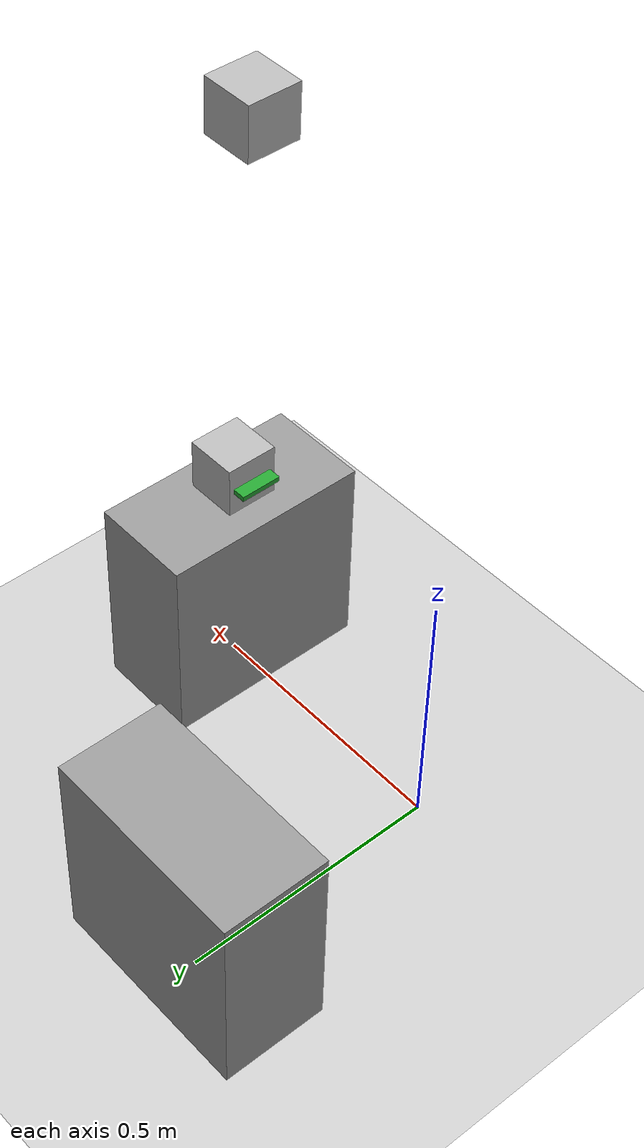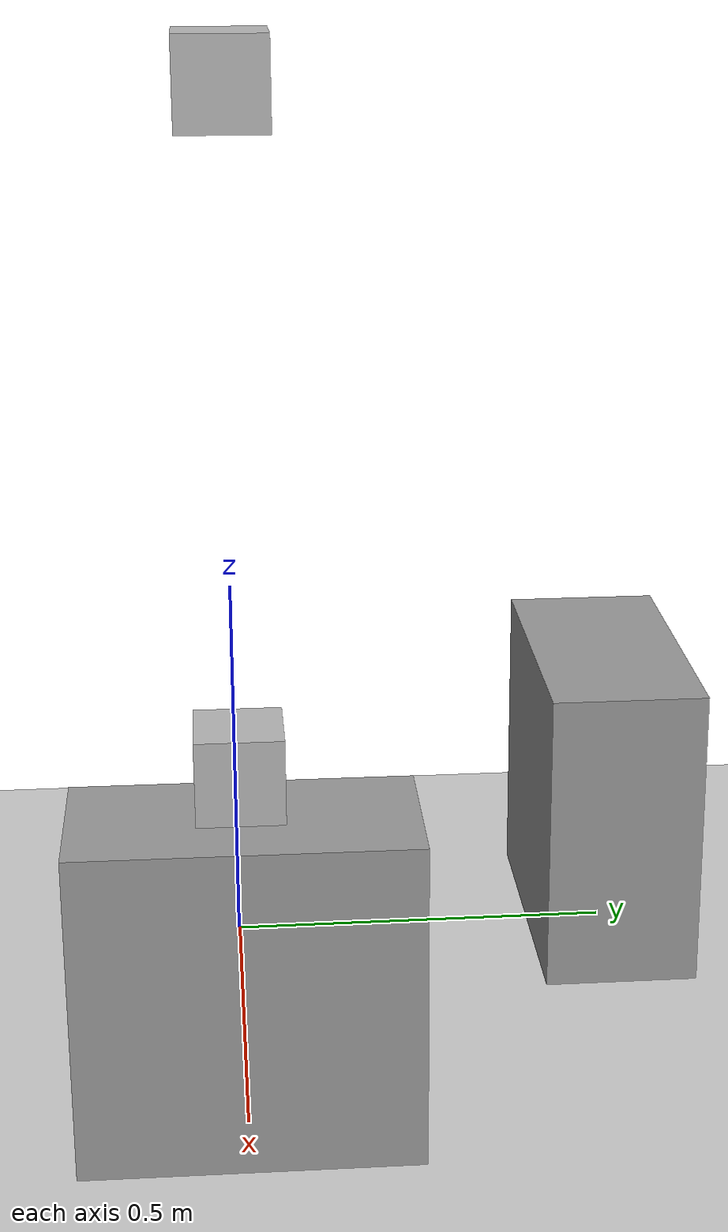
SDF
<sdf version="1.6">
 <world name="default">
  <light name="sun" type="directional">
   <pose>0 0 10 0 -0 0</pose>
   <diffuse>0.8 0.8 0.8 1</diffuse>
   <specular>0.2 0.2 0.2 1</specular>
   <attenuation>
    <range>1000</range>
    <constant>0.9</constant>
    <linear>0.01</linear>
    <quadratic>0.001</quadratic>
   </attenuation>
   <direction>-0.5 0.1 -0.9</direction>
  </light>
  <model name="ground_plane">
   <static>1</static>
   <link name="link">
    <collision name="collision">
     <geometry><plane><normal>0 0 1</normal><size>100 100</size></plane></geometry>
     <surface>
      <contact><collide_bitmask>65535</collide_bitmask></contact>
      <friction><ode><mu>100</mu><mu2>50</mu2></ode></friction>
     </surface>
    </collision>
    <visual name="visual">
     <cast_shadows>0</cast_shadows>
     <geometry><plane><normal>0 0 1</normal><size>100 100</size></plane></geometry>
     <material>
      <script><uri>file://media/materials/scripts/gazebo.material</uri><name>Gazebo/Grey</name></script>
     </material>
    </visual>
   </link>
  </model>
  <gravity>0 0 -9.8</gravity>
  <magnetic_field>6e-06 2.3e-05 -4.2e-05</magnetic_field>
  <atmosphere type="adiabatic"/>
  <physics name="default_physics" default="0" type="ode">
   <max_step_size>0.001</max_step_size>
   <real_time_factor>1</real_time_factor>
   <real_time_update_rate>1000</real_time_update_rate>
  </physics>
  <scene><ambient>0.4 0.4 0.4 1</ambient><background>0.7 0.7 0.7 1</background><shadows>1</shadows></scene>
  <spherical_coordinates>
   <surface_model>EARTH_WGS84</surface_model>
   <latitude_deg>0</latitude_deg>
   <longitude_deg>0</longitude_deg>
   <elevation>0</elevation>
   <heading_deg>0</heading_deg>
  </spherical_coordinates>
  <model name="table1">
   <pose>0.503266 0.003366 0.196981 0.000189 8.3e-05 -0.003542</pose>
   <link name="link">
    <inertial>
     <mass>1</mass>
     <inertia>
      <ixx>0.166667</ixx>
      <ixy>0</ixy>
      <ixz>0</ixz>
      <iyy>0.166667</iyy>
      <iyz>0</iyz>
      <izz>0.166667</izz>
     </inertia>
    </inertial>
    <collision name="collision"><geometry><box><size>0.2 0.4 0.4</size></box></geometry></collision>
    <visual name="visual">
     <geometry><box><size>0.2 0.4 0.4</size></box></geometry>
     <material>
      <script><name>Gazebo/Grey</name><uri>file://media/materials/scripts/gazebo.material</uri></script>
     </material>
    </visual>
    <kinematic>1</kinematic>
   </link>
  </model>
  <model name="table2">
   <pose>-3e-05 0.499983 0.2 -2e-06 0 -1.6e-05</pose>
   <link name="link">
    <inertial>
     <mass>1</mass>
     <inertia>
      <ixx>0.166667</ixx>
      <ixy>0</ixy>
      <ixz>0</ixz>
      <iyy>0.166667</iyy>
      <iyz>0</iyz>
      <izz>0.166667</izz>
     </inertia>
    </inertial>
    <collision name="collision"><geometry><box><size>0.4 0.2 0.4</size></box></geometry></collision>
    <visual name="visual">
     <geometry><box><size>0.4 0.2 0.4</size></box></geometry>
     <material>
      <script><name>Gazebo/Grey</name><uri>file://media/materials/scripts/gazebo.material</uri></script>
     </material>
    </visual>
    <kinematic>1</kinematic>
   </link>
  </model>
  <model name="box_apple">
   <link name="box_apple_link">
    <inertial>
     <mass>0.06</mass>
     <inertia><ixx>0.001</ixx><ixy>0</ixy><ixz>0</ixz><iyy>0.001</iyy><iyz>0</iyz><izz>0.001</izz></inertia>
     <pose>-0.03 0 0.02 0 -0 0</pose>
    </inertial>
    <collision name="box_apple_collision">
     <geometry><box><size>0.1 0.1 0.1</size></box></geometry>
     <surface>
      <contact><ode><kp>1e+07</kp><kd>1e+05</kd><min_depth>0.001</min_depth></ode></contact>
      <friction><ode><mu>1000</mu><mu2>1000</mu2></ode></friction>
     </surface>
    </collision>
    <visual name="box_apple_visual">
     <geometry><box><size>0.1 0.1 0.1</size></box></geometry>
     <material>
      <script>
       <uri>model://apple_box/materials/scripts</uri>
       <uri>model://apple_box/materials/textures</uri>
       <name>apple_box</name>
      </script>
     </material>
    </visual>
    <collision name="box_holder">
     <pose>-0.06 0.0 0.00 0 0 0</pose>
     <geometry><box><size>0.03 0.08 0.01</size></box></geometry>
     <surface>
      <contact><ode><kp>1e+07</kp><kd>1e+05</kd><min_depth>0.001</min_depth></ode></contact>
      <friction><ode><mu>1000</mu><mu2>1000</mu2></ode></friction>
     </surface>
    </collision>
    <visual name="box_holder">
     <pose>-0.06 0.0 0.00 0 0 0</pose>
     <geometry><box><size>0.03 0.08 0.01</size></box></geometry>
     <material>
      <script><uri>file://media/materials/scripts/gazebo.material</uri><name>Gazebo/Green</name></script>
     </material>
    </visual>
   </link>
   <static>0</static>
   <pose>0.5 0.0 0.45697 0 0 -0</pose>
  </model>
  <model name="camera">
   <pose>0.45 0.0 1.2 0 1.55374 0</pose>
   <link name="link">
    <inertial>
     <mass>0.1</mass>
     <inertia>
      <ixx>0.000166667</ixx>
      <iyy>0.000166667</iyy>
      <izz>0.000166667</izz>
      <ixy>0</ixy>
      <ixz>0</ixz>
      <iyz>0</iyz>
     </inertia>
    </inertial>
    <collision name="collision"><geometry><box><size>0.1 0.1 0.1</size></box></geometry></collision>
    <visual name="visual"><geometry><box><size>0.1 0.1 0.1</size></box></geometry></visual>
    <sensor name="camera" type="camera">
     <camera name="head">
      <horizontal_fov>1.39626</horizontal_fov>
      <image><width>400</width><height>300</height><format>R8G8B8</format></image>
      <clip><near>0.02</near><far>300</far></clip>
     </camera>
     <always_on>1</always_on>
     <update_rate>30</update_rate>
     <visualize>1</visualize>
     <plugin name="camera_controller" filename="libgazebo_ros_camera.so">
      <alwaysOn>1</alwaysOn>
      <updateRate>0.0</updateRate>
      <cameraName>camera</cameraName>
      <imageTopicName>image_raw</imageTopicName>
      <cameraInfoTopicName>camera_info</cameraInfoTopicName>
      <frameName>camera_link</frameName>
      <hackBaseline>0.07</hackBaseline>
      <distortionK1>0.0</distortionK1>
      <distortionK2>0.0</distortionK2>
      <distortionK3>0.0</distortionK3>
      <distortionT1>0.0</distortionT1>
      <distortionT2>0.0</distortionT2>
     </plugin>
    </sensor>
   </link>
   <static>1</static>
  </model>
 </world>
</sdf>
